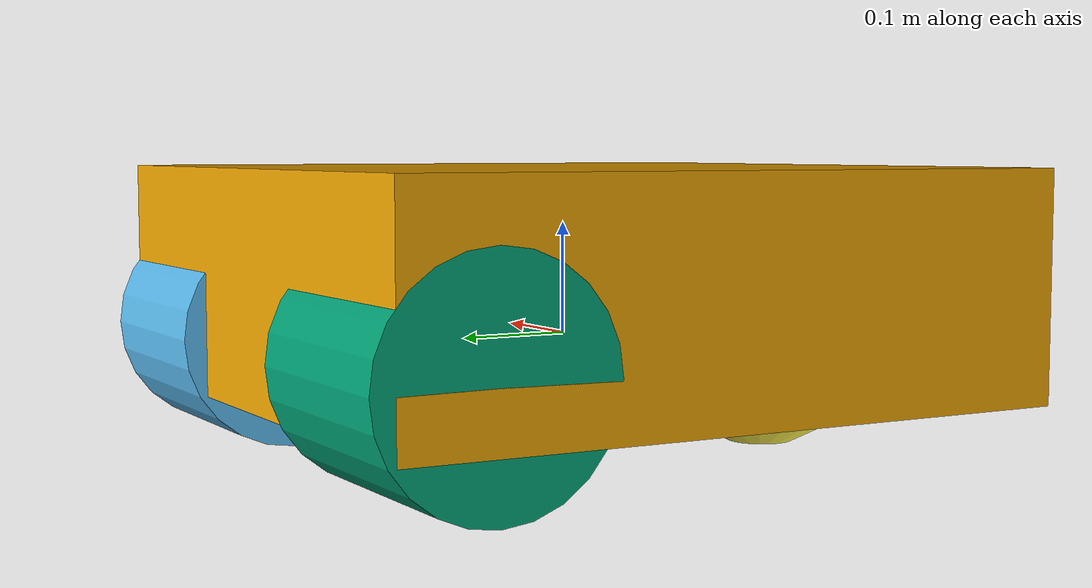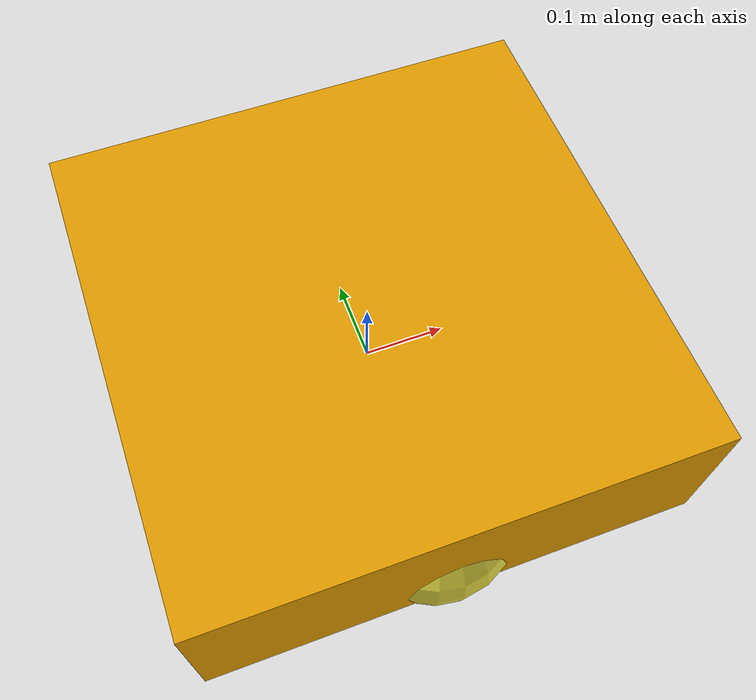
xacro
<?xml version="1.0"?>

<robot xmlns:xacro="https://www.ros.org/wiki/xacro" name="BOBBY">

    <xacro:include filename="$(find ros_basics_2019)/urdf/macros.xacro" />
    <xacro:include filename="$(find ros_basics_2019)/urdf/materials.xacro" />

    <!-- Design your robot here -->

  <link name="base_link">
	<visual>
		<geometry>
        <box size="0.6 0.6 0.2"/>
		</geometry>
		<origin xyz="0 0 +0.05"/>
	</visual>
	<collision>
	      <geometry>

	  <box size="0.6 0.6 0.2"/>
	      </geometry>
	</collision>
     <inertial>
       <mass value="10"/>
       <inertia ixx="0.4" ixy="0.0" ixz="0.0" iyy="0.4" iyz="0.0" izz="0.2"/>
     </inertial>

</link>

  <link name="right_leg">
    <visual>
      <geometry>
		<cylinder length="0.2" radius="0.1"/>
      </geometry>
      <origin rpy="0 1.57075 0" xyz="0 0 0"/>
    </visual>
<collision>
      <geometry>
		<cylinder length="0.2" radius="0.1"/>
      </geometry>
</collision>
     <inertial>
       <mass value="1"/>
       <inertia ixx="0.4" ixy="0.0" ixz="0.0" iyy="1.57" iyz="0.0" izz="0.2"/>
     </inertial>
  </link>

  <joint name="base_to_right_leg" type="continuous">
	<axis xyz= "1 0 0"/>
    <parent link="base_link"/>
    <child link="right_leg"/>
    <origin xyz="0.2 0.22 0.00"/>
  </joint>

  <link name="left_leg">
    <visual>
      <geometry>
		<cylinder length="0.2" radius="0.1"/>
      </geometry>
      <origin rpy="0 1.57075 0" xyz="0 0 0"/>
    </visual>
<collision>
      <geometry>
		<cylinder length="0.2" radius="0.1"/>
      </geometry>
</collision>
     <inertial>
       <mass value="1"/>
       <inertia ixx="0.4" ixy="0.0" ixz="0.0" iyy="1.57" iyz="0.0" izz="0.2"/>
     </inertial>
  </link>

  <joint name="base_to_left_leg" type="continuous">
    <parent link="base_link"/>
    <child link="left_leg"/>
	<axis xyz= "1 0 0"/>
    <origin xyz="-0.2 0.22 0.00"/>
  </joint>

  <link name="sphere">
    <visual>
      <geometry>
        <sphere radius="0.1"/>
      </geometry>
    </visual>
<collision>
      <geometry>
        <sphere radius="0.1"/>
      </geometry>
</collision>
     <inertial>
       <mass value="1"/>
       <inertia ixx="0.4" ixy="0.0" ixz="0.0" iyy="0.4" iyz="0.0" izz="0.2"/>
     </inertial>
  </link>

  <joint name="base_to_sphere" type="continuous">
    <parent link="base_link"/>
    <child link="sphere"/>
<axis xyz= "1 0 0"/>
    <origin xyz="0 -0.22 -0.02"/>
  </joint>

    <!-- Below you will find samples of gazebo plugins you may want to use. -->
    <!-- These should be adapted to your robot's design -->
    <gazebo reference="YOUR_SENSOR_LINK">
        <sensor type="ray" name="laser_right">
            <pose>0 0 0 0 0 0</pose>
            <ray>
                <scan>
                    <horizontal>
                        <samples>13</samples>
                        <resolution>1</resolution>
                        <min_angle>-1.571</min_angle>
                        <max_angle>1.571</max_angle>
                    </horizontal>
                </scan>
                <range>
                    <!-- You can edit adapt these to your robot's size -->
                    <min>0.0005</min>
                    <max>0.04</max>
                    <resolution>0.0001</resolution>
                </range>
            </ray>
            <plugin name="laser" filename="libgazebo_ros_laser.so" >
                <topicName>YOUR_ROBOT_LASER/scan</topicName>
                <frameName>YOUR_ROBOT_LASER_LINK</frameName>
            </plugin>
            <always_on>1</always_on>
            <update_rate>10</update_rate>
            <visualize>true</visualize>
        </sensor>
    </gazebo>

    <gazebo>
        <plugin name="differential_drive_controller" filename="libgazebo_ros_diff_drive.so">
            <alwaysOn>true</alwaysOn>
            <updateRate>20</updateRate>
            <leftJoint>base_to_left_leg</leftJoint>
            <rightJoint>base_to_right_leg</rightJoint>
            <wheelSeparation>0.6</wheelSeparation>
            <wheelDiameter>0.2</wheelDiameter>
            <wheelTorque>20</wheelTorque>

            <commandTopic>cmd_vel</commandTopic>
            <odometryTopic>odom</odometryTopic>
            <odometryFrame>odom</odometryFrame>

            <robotBaseFrame>base_link</robotBaseFrame>
        </plugin>
    </gazebo>

</robot>

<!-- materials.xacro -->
<robot name="BOBBY">

    <material name="white">
        <color rgba="1 1 1 1"/>
    </material>

    <material name="black">
        <color rgba="0 0 0 1"/>
    </material>

    <material name="blue">
        <color rgba="0 0 0.8 1"/>
    </material>

    <material name="yellow">
        <color rgba="1 1 0 1"/>
    </material>

    <material name="green">
        <color rgba="0 1 0 1"/>
    </material>

</robot>
